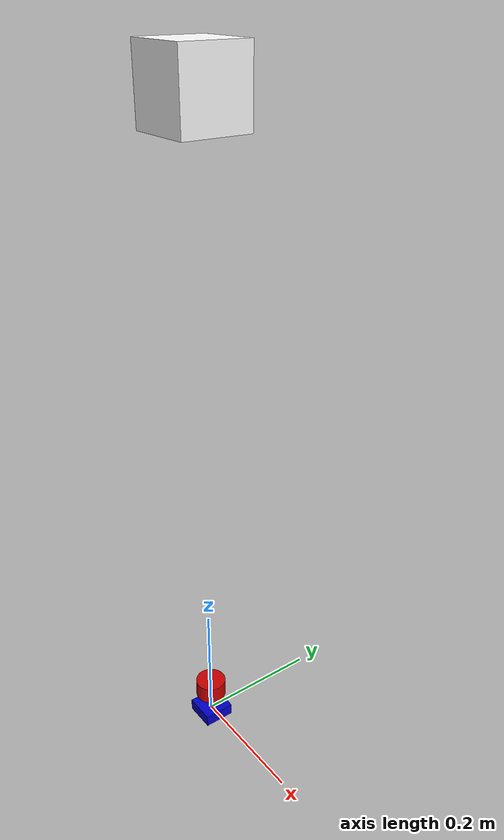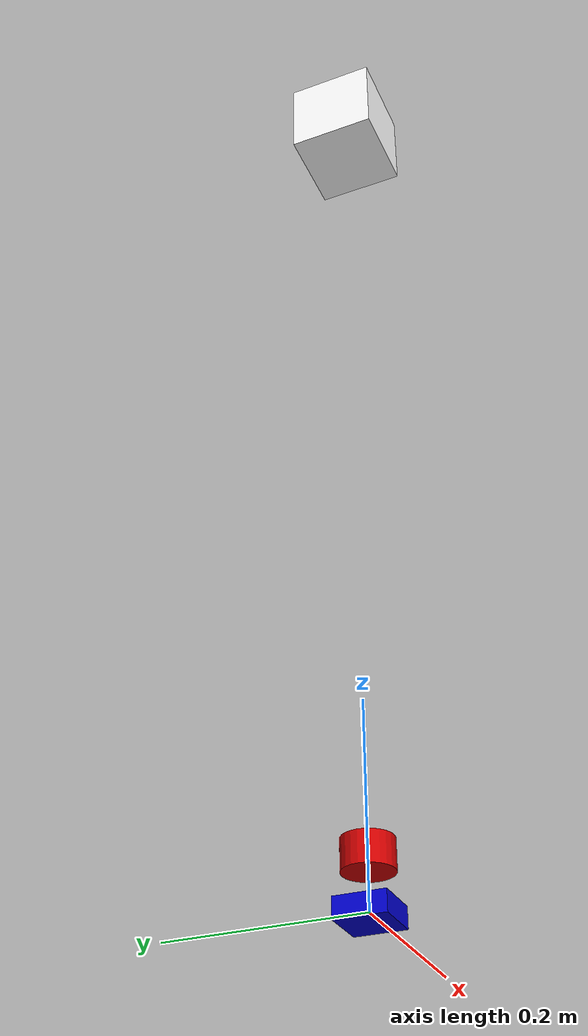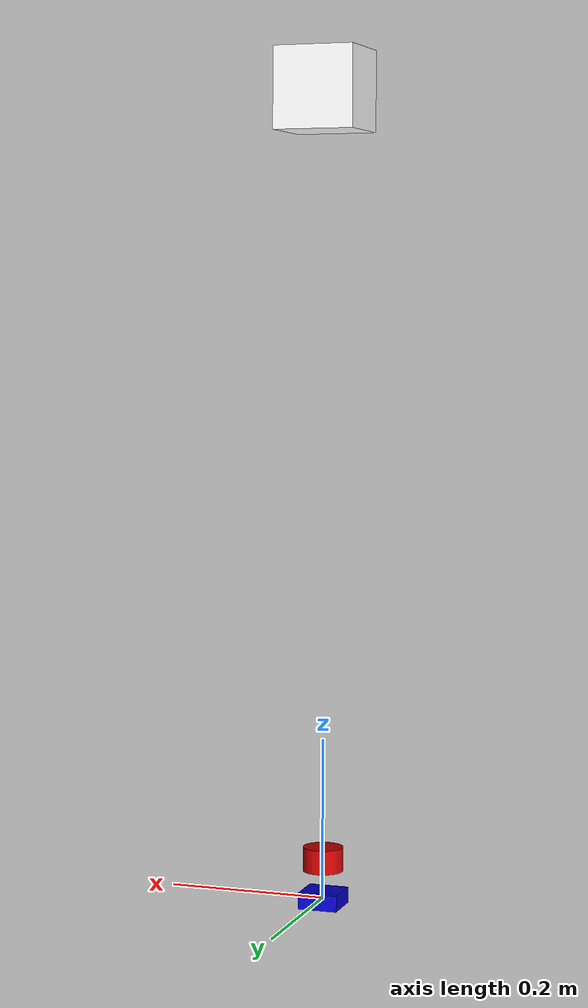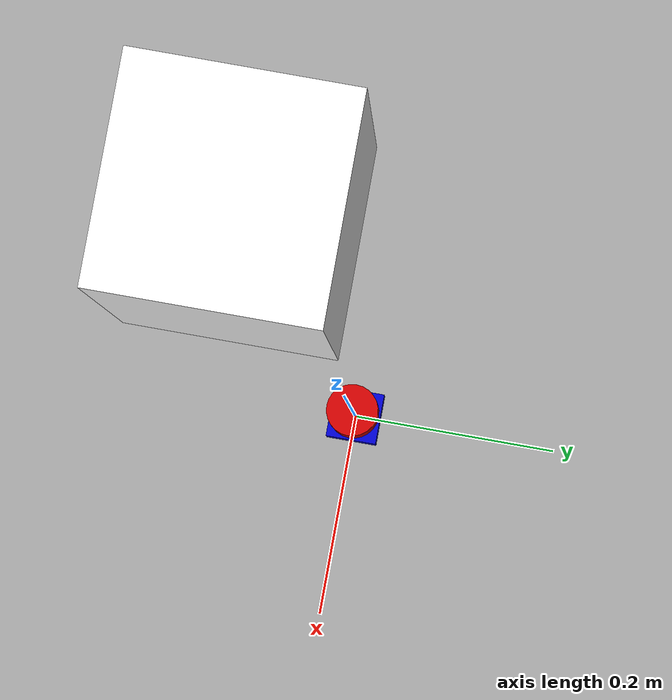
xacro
<?xml version="1.0"?>
<robot name="slamkit2d_urdf" xmlns:xacro="http://www.ros.org/wiki/xacro">

  <!-- Defining the colors used in this robot -->
  <material name="Black">
    <color rgba="0.0 0.0 0.0 1.0"/>
  </material>

  <material name="White">
    <color rgba="1.0 1.0 1.0 1.0"/>
  </material>

  <material name="Red">
    <color rgba="0.8 0.0 0.0 1.0"/>
  </material>

  <material name="Green">
    <color rgba="0.0 0.8 0.0 1.0"/>
  </material>

  <material name="Blue">
    <color rgba="0.0 0.0 0.8 1.0"/>
  </material>

  <!-- base_link --> <!--Actual body-->
  <link name="base_link">
    <visual>
      <origin xyz="0 0 1.0" rpy="0 0 0" />
      <geometry>
          <box size="0.1 0.1 0.1" />
      </geometry>
      <material name="White" />
    </visual>

    <collision>
      <origin xyz="0 0 0" rpy="0 0 0 " />
      <geometry>
          <box size="0.1 0.1 0.1" />
      </geometry>
    </collision>
  </link>

  <link name="imu_link">
      <visual>
      <origin xyz="0 0 0" rpy="0 0 0" />
      <geometry>
	      <box size="0.05 0.05 0.02" />
      </geometry>
      <material name="Blue" />
    </visual>
  </link>

  <link name="lidar_link">
      <visual>
      <origin xyz="0 0 0" rpy="0 0 0" />
      <geometry>
	      <cylinder length="0.03" radius="0.025" />
      </geometry>
      <material name="Red" />
    </visual>
  </link>

  <joint name="imu_joint" type="fixed">
    <parent link="base_link"/>
    <child link="imu_link"/>
    <origin xyz="0.0 0.0 0.0" rpy="0 0 0"/>
  </joint>

  <joint name="lidar_joint" type="fixed">
    <parent link="base_link"/>
    <child link="lidar_link"/>
    <origin xyz="0 0 0.05" rpy="0 0 0"/>
  </joint>

</robot>
